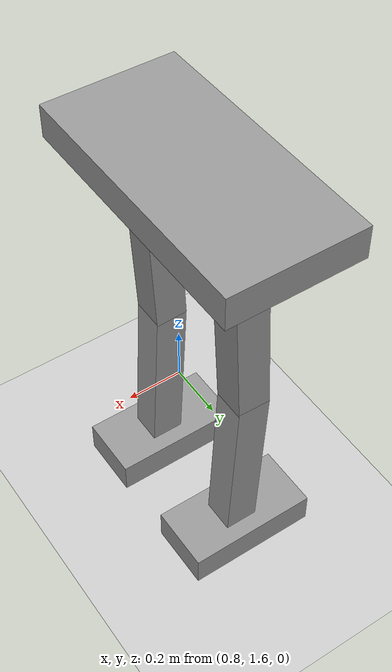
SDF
<sdf version="1.6">
 <world name="default">
  <model name="ground_plane">
   <static>1</static>
   <link name="link">
    <collision name="collision">
     <geometry><plane><normal>0 0 1</normal><size>100 100</size></plane></geometry>
     <surface>
      <contact><collide_bitmask>65535</collide_bitmask></contact>
      <friction><ode><mu>100</mu><mu2>50</mu2></ode></friction>
     </surface>
    </collision>
    <visual name="visual">
     <cast_shadows>0</cast_shadows>
     <geometry><plane><normal>0 0 1</normal><size>100 100</size></plane></geometry>
     <material>
      <script><uri>file://media/materials/scripts/gazebo.material</uri><name>Gazebo/Grey</name></script>
     </material>
    </visual>
   </link>
  </model>
  <model name="HumanoidRobot_clone_3">
   <link name="link_0">
    <inertial>
     <mass>1</mass>
     <inertia>
      <ixx>0.166667</ixx>
      <ixy>0</ixy>
      <ixz>0</ixz>
      <iyy>0.166667</iyy>
      <iyz>0</iyz>
      <izz>0.166667</izz>
     </inertia>
    </inertial>
    <pose>0 0 1.2 0 -0 0</pose>
    <visual name="visual">
     <geometry><box><size>0.4 0.8 0.1</size></box></geometry>
     <material>
      <lighting>1</lighting>
      <script><uri>file://media/materials/scripts/gazebo.material</uri><name>Gazebo/Grey</name></script>
      <shader type="vertex"><normal_map>__default__</normal_map></shader>
      <ambient>0.3 0.3 0.3 1</ambient>
      <diffuse>0.7 0.7 0.7 1</diffuse>
      <specular>0.01 0.01 0.01 1</specular>
      <emissive>0 0 0 1</emissive>
     </material>
    </visual>
    <collision name="collision">
     <geometry><box><size>0.4 0.8 0.1</size></box></geometry>
     <surface>
      <friction>
       <ode><mu>1</mu><mu2>1</mu2><fdir1>0 0 0</fdir1><slip1>0</slip1><slip2>0</slip2></ode>
       <torsional>
        <coefficient>1</coefficient>
        <patch_radius>0</patch_radius>
        <surface_radius>0</surface_radius>
        <use_patch_radius>1</use_patch_radius>
        <ode><slip>0</slip></ode>
       </torsional>
      </friction>
      <bounce><restitution_coefficient>0</restitution_coefficient><threshold>1e+06</threshold></bounce>
      <contact>
       <collide_without_contact>0</collide_without_contact>
       <collide_without_contact_bitmask>1</collide_without_contact_bitmask>
       <collide_bitmask>1</collide_bitmask>
       <ode>
        <soft_cfm>0</soft_cfm>
        <soft_erp>0.2</soft_erp>
        <kp>1e+13</kp>
        <kd>1</kd>
        <max_vel>0.01</max_vel>
        <min_depth>0</min_depth>
       </ode>
       <bullet>
        <split_impulse>1</split_impulse>
        <split_impulse_penetration_threshold>-0.01</split_impulse_penetration_threshold>
        <soft_cfm>0</soft_cfm>
        <soft_erp>0.2</soft_erp>
        <kp>1e+13</kp>
        <kd>1</kd>
       </bullet>
      </contact>
     </surface>
    </collision>
   </link>
   <link name="link_0_clone">
    <inertial>
     <mass>1</mass>
     <inertia>
      <ixx>0.166667</ixx>
      <ixy>0</ixy>
      <ixz>0</ixz>
      <iyy>0.166667</iyy>
      <iyz>0</iyz>
      <izz>0.166667</izz>
     </inertia>
    </inertial>
    <pose>0 0.2 0 0 -0 0</pose>
    <visual name="visual">
     <geometry><box><size>0.4 0.2 0.1</size></box></geometry>
     <material>
      <lighting>1</lighting>
      <script><uri>file://media/materials/scripts/gazebo.material</uri><name>Gazebo/Grey</name></script>
      <shader type="vertex"><normal_map>__default__</normal_map></shader>
      <ambient>0.3 0.3 0.3 1</ambient>
      <diffuse>0.7 0.7 0.7 1</diffuse>
      <specular>0.01 0.01 0.01 1</specular>
      <emissive>0 0 0 1</emissive>
     </material>
    </visual>
    <collision name="collision">
     <geometry><box><size>0.4 0.2 0.1</size></box></geometry>
     <surface>
      <friction>
       <ode><mu>1</mu><mu2>1</mu2><fdir1>0 0 0</fdir1><slip1>0</slip1><slip2>0</slip2></ode>
       <torsional>
        <coefficient>1</coefficient>
        <patch_radius>0</patch_radius>
        <surface_radius>0</surface_radius>
        <use_patch_radius>1</use_patch_radius>
        <ode><slip>0</slip></ode>
       </torsional>
      </friction>
      <bounce><restitution_coefficient>0</restitution_coefficient><threshold>1e+06</threshold></bounce>
      <contact>
       <collide_without_contact>0</collide_without_contact>
       <collide_without_contact_bitmask>1</collide_without_contact_bitmask>
       <collide_bitmask>1</collide_bitmask>
       <ode>
        <soft_cfm>0</soft_cfm>
        <soft_erp>0.2</soft_erp>
        <kp>1e+13</kp>
        <kd>1</kd>
        <max_vel>0.01</max_vel>
        <min_depth>0</min_depth>
       </ode>
       <bullet>
        <split_impulse>1</split_impulse>
        <split_impulse_penetration_threshold>-0.01</split_impulse_penetration_threshold>
        <soft_cfm>0</soft_cfm>
        <soft_erp>0.2</soft_erp>
        <kp>1e+13</kp>
        <kd>1</kd>
       </bullet>
      </contact>
     </surface>
    </collision>
   </link>
   <link name="link_0_clone_clone">
    <inertial>
     <mass>1</mass>
     <inertia>
      <ixx>0.166667</ixx>
      <ixy>0</ixy>
      <ixz>0</ixz>
      <iyy>0.166667</iyy>
      <iyz>0</iyz>
      <izz>0.166667</izz>
     </inertia>
    </inertial>
    <pose>0 -0.2 0 0 -0 0</pose>
    <visual name="visual">
     <geometry><box><size>0.4 0.2 0.1</size></box></geometry>
     <material>
      <lighting>1</lighting>
      <script><uri>file://media/materials/scripts/gazebo.material</uri><name>Gazebo/Grey</name></script>
      <shader type="vertex"><normal_map>__default__</normal_map></shader>
      <ambient>0.3 0.3 0.3 1</ambient>
      <diffuse>0.7 0.7 0.7 1</diffuse>
      <specular>0.01 0.01 0.01 1</specular>
      <emissive>0 0 0 1</emissive>
     </material>
    </visual>
    <collision name="collision">
     <geometry><box><size>0.4 0.2 0.1</size></box></geometry>
     <surface>
      <friction>
       <ode><mu>1</mu><mu2>1</mu2><fdir1>0 0 0</fdir1><slip1>0</slip1><slip2>0</slip2></ode>
       <torsional>
        <coefficient>1</coefficient>
        <patch_radius>0</patch_radius>
        <surface_radius>0</surface_radius>
        <use_patch_radius>1</use_patch_radius>
        <ode><slip>0</slip></ode>
       </torsional>
      </friction>
      <bounce><restitution_coefficient>0</restitution_coefficient><threshold>1e+06</threshold></bounce>
      <contact>
       <collide_without_contact>0</collide_without_contact>
       <collide_without_contact_bitmask>1</collide_without_contact_bitmask>
       <collide_bitmask>1</collide_bitmask>
       <ode>
        <soft_cfm>0</soft_cfm>
        <soft_erp>0.2</soft_erp>
        <kp>1e+13</kp>
        <kd>1</kd>
        <max_vel>0.01</max_vel>
        <min_depth>0</min_depth>
       </ode>
       <bullet>
        <split_impulse>1</split_impulse>
        <split_impulse_penetration_threshold>-0.01</split_impulse_penetration_threshold>
        <soft_cfm>0</soft_cfm>
        <soft_erp>0.2</soft_erp>
        <kp>1e+13</kp>
        <kd>1</kd>
       </bullet>
      </contact>
     </surface>
    </collision>
   </link>
   <link name="link_1">
    <inertial>
     <mass>1</mass>
     <inertia>
      <ixx>0.166667</ixx>
      <ixy>0</ixy>
      <ixz>0</ixz>
      <iyy>0.166667</iyy>
      <iyz>0</iyz>
      <izz>0.166667</izz>
     </inertia>
    </inertial>
    <pose>0 0.2 0.86 0 0.05 0</pose>
    <visual name="visual">
     <geometry><box><size>0.1 0.1 0.6</size></box></geometry>
     <material>
      <lighting>1</lighting>
      <script><uri>file://media/materials/scripts/gazebo.material</uri><name>Gazebo/Grey</name></script>
      <shader type="vertex"><normal_map>__default__</normal_map></shader>
      <ambient>0.3 0.3 0.3 1</ambient>
      <diffuse>0.7 0.7 0.7 1</diffuse>
      <specular>0.01 0.01 0.01 1</specular>
      <emissive>0 0 0 1</emissive>
     </material>
    </visual>
    <collision name="collision">
     <geometry><box><size>0.1 0.1 0.6</size></box></geometry>
     <surface>
      <friction>
       <ode><mu>1</mu><mu2>1</mu2><fdir1>0 0 0</fdir1><slip1>0</slip1><slip2>0</slip2></ode>
       <torsional>
        <coefficient>1</coefficient>
        <patch_radius>0</patch_radius>
        <surface_radius>0</surface_radius>
        <use_patch_radius>1</use_patch_radius>
        <ode><slip>0</slip></ode>
       </torsional>
      </friction>
      <bounce><restitution_coefficient>0</restitution_coefficient><threshold>1e+06</threshold></bounce>
      <contact>
       <collide_without_contact>0</collide_without_contact>
       <collide_without_contact_bitmask>1</collide_without_contact_bitmask>
       <collide_bitmask>1</collide_bitmask>
       <ode>
        <soft_cfm>0</soft_cfm>
        <soft_erp>0.2</soft_erp>
        <kp>1e+13</kp>
        <kd>1</kd>
        <max_vel>0.01</max_vel>
        <min_depth>0</min_depth>
       </ode>
       <bullet>
        <split_impulse>1</split_impulse>
        <split_impulse_penetration_threshold>-0.01</split_impulse_penetration_threshold>
        <soft_cfm>0</soft_cfm>
        <soft_erp>0.2</soft_erp>
        <kp>1e+13</kp>
        <kd>1</kd>
       </bullet>
      </contact>
     </surface>
    </collision>
   </link>
   <link name="link_1_clone">
    <inertial>
     <mass>1</mass>
     <inertia>
      <ixx>0.166667</ixx>
      <ixy>0</ixy>
      <ixz>0</ixz>
      <iyy>0.166667</iyy>
      <iyz>0</iyz>
      <izz>0.166667</izz>
     </inertia>
    </inertial>
    <pose>0 -0.2 0.86 0 0.05 0</pose>
    <visual name="visual">
     <geometry><box><size>0.1 0.1 0.6</size></box></geometry>
     <material>
      <lighting>1</lighting>
      <script><uri>file://media/materials/scripts/gazebo.material</uri><name>Gazebo/Grey</name></script>
      <shader type="vertex"><normal_map>__default__</normal_map></shader>
      <ambient>0.3 0.3 0.3 1</ambient>
      <diffuse>0.7 0.7 0.7 1</diffuse>
      <specular>0.01 0.01 0.01 1</specular>
      <emissive>0 0 0 1</emissive>
     </material>
    </visual>
    <collision name="collision">
     <geometry><box><size>0.1 0.1 0.6</size></box></geometry>
     <surface>
      <friction>
       <ode><mu>1</mu><mu2>1</mu2><fdir1>0 0 0</fdir1><slip1>0</slip1><slip2>0</slip2></ode>
       <torsional>
        <coefficient>1</coefficient>
        <patch_radius>0</patch_radius>
        <surface_radius>0</surface_radius>
        <use_patch_radius>1</use_patch_radius>
        <ode><slip>0</slip></ode>
       </torsional>
      </friction>
      <bounce><restitution_coefficient>0</restitution_coefficient><threshold>1e+06</threshold></bounce>
      <contact>
       <collide_without_contact>0</collide_without_contact>
       <collide_without_contact_bitmask>1</collide_without_contact_bitmask>
       <collide_bitmask>1</collide_bitmask>
       <ode>
        <soft_cfm>0</soft_cfm>
        <soft_erp>0.2</soft_erp>
        <kp>1e+13</kp>
        <kd>1</kd>
        <max_vel>0.01</max_vel>
        <min_depth>0</min_depth>
       </ode>
       <bullet>
        <split_impulse>1</split_impulse>
        <split_impulse_penetration_threshold>-0.01</split_impulse_penetration_threshold>
        <soft_cfm>0</soft_cfm>
        <soft_erp>0.2</soft_erp>
        <kp>1e+13</kp>
        <kd>1</kd>
       </bullet>
      </contact>
     </surface>
    </collision>
   </link>
   <link name="link_1_clone_0">
    <inertial>
     <mass>1</mass>
     <inertia>
      <ixx>0.166667</ixx>
      <ixy>0</ixy>
      <ixz>0</ixz>
      <iyy>0.166667</iyy>
      <iyz>0</iyz>
      <izz>0.166667</izz>
     </inertia>
    </inertial>
    <pose>0 0.2 0.27 0 -0.05 0</pose>
    <visual name="visual">
     <geometry><box><size>0.1 0.1 0.6</size></box></geometry>
     <material>
      <lighting>1</lighting>
      <script><uri>file://media/materials/scripts/gazebo.material</uri><name>Gazebo/Grey</name></script>
      <shader type="vertex"><normal_map>__default__</normal_map></shader>
      <ambient>0.3 0.3 0.3 1</ambient>
      <diffuse>0.7 0.7 0.7 1</diffuse>
      <specular>0.01 0.01 0.01 1</specular>
      <emissive>0 0 0 1</emissive>
     </material>
    </visual>
    <collision name="collision">
     <geometry><box><size>0.1 0.1 0.6</size></box></geometry>
     <surface>
      <friction>
       <ode><mu>1</mu><mu2>1</mu2><fdir1>0 0 0</fdir1><slip1>0</slip1><slip2>0</slip2></ode>
       <torsional>
        <coefficient>1</coefficient>
        <patch_radius>0</patch_radius>
        <surface_radius>0</surface_radius>
        <use_patch_radius>1</use_patch_radius>
        <ode><slip>0</slip></ode>
       </torsional>
      </friction>
      <bounce><restitution_coefficient>0</restitution_coefficient><threshold>1e+06</threshold></bounce>
      <contact>
       <collide_without_contact>0</collide_without_contact>
       <collide_without_contact_bitmask>1</collide_without_contact_bitmask>
       <collide_bitmask>1</collide_bitmask>
       <ode>
        <soft_cfm>0</soft_cfm>
        <soft_erp>0.2</soft_erp>
        <kp>1e+13</kp>
        <kd>1</kd>
        <max_vel>0.01</max_vel>
        <min_depth>0</min_depth>
       </ode>
       <bullet>
        <split_impulse>1</split_impulse>
        <split_impulse_penetration_threshold>-0.01</split_impulse_penetration_threshold>
        <soft_cfm>0</soft_cfm>
        <soft_erp>0.2</soft_erp>
        <kp>1e+13</kp>
        <kd>1</kd>
       </bullet>
      </contact>
     </surface>
    </collision>
   </link>
   <link name="link_1_clone_0_clone">
    <inertial>
     <mass>1</mass>
     <inertia>
      <ixx>0.166667</ixx>
      <ixy>0</ixy>
      <ixz>0</ixz>
      <iyy>0.166667</iyy>
      <iyz>0</iyz>
      <izz>0.166667</izz>
     </inertia>
    </inertial>
    <pose>0 -0.2 0.27 0 -0.05 0</pose>
    <visual name="visual">
     <geometry><box><size>0.1 0.1 0.6</size></box></geometry>
     <material>
      <lighting>1</lighting>
      <script><uri>file://media/materials/scripts/gazebo.material</uri><name>Gazebo/Grey</name></script>
      <shader type="vertex"><normal_map>__default__</normal_map></shader>
      <ambient>0.3 0.3 0.3 1</ambient>
      <diffuse>0.7 0.7 0.7 1</diffuse>
      <specular>0.01 0.01 0.01 1</specular>
      <emissive>0 0 0 1</emissive>
     </material>
    </visual>
    <collision name="collision">
     <geometry><box><size>0.1 0.1 0.6</size></box></geometry>
     <surface>
      <friction>
       <ode><mu>1</mu><mu2>1</mu2><fdir1>0 0 0</fdir1><slip1>0</slip1><slip2>0</slip2></ode>
       <torsional>
        <coefficient>1</coefficient>
        <patch_radius>0</patch_radius>
        <surface_radius>0</surface_radius>
        <use_patch_radius>1</use_patch_radius>
        <ode><slip>0</slip></ode>
       </torsional>
      </friction>
      <bounce><restitution_coefficient>0</restitution_coefficient><threshold>1e+06</threshold></bounce>
      <contact>
       <collide_without_contact>0</collide_without_contact>
       <collide_without_contact_bitmask>1</collide_without_contact_bitmask>
       <collide_bitmask>1</collide_bitmask>
       <ode>
        <soft_cfm>0</soft_cfm>
        <soft_erp>0.2</soft_erp>
        <kp>1e+13</kp>
        <kd>1</kd>
        <max_vel>0.01</max_vel>
        <min_depth>0</min_depth>
       </ode>
       <bullet>
        <split_impulse>1</split_impulse>
        <split_impulse_penetration_threshold>-0.01</split_impulse_penetration_threshold>
        <soft_cfm>0</soft_cfm>
        <soft_erp>0.2</soft_erp>
        <kp>1e+13</kp>
        <kd>1</kd>
       </bullet>
      </contact>
     </surface>
    </collision>
   </link>
   <joint name="link_0_JOINT_0" type="fixed">
    <parent>link_0</parent>
    <child>link_1_clone</child>
    <physics>
     <ode><limit><cfm>0</cfm><erp>0.2</erp></limit><suspension><cfm>0</cfm><erp>0.2</erp></suspension></ode>
    </physics>
   </joint>
   <joint name="link_0_JOINT_1" type="fixed">
    <parent>link_0</parent>
    <child>link_1</child>
    <physics>
     <ode><limit><cfm>0</cfm><erp>0.2</erp></limit><suspension><cfm>0</cfm><erp>0.2</erp></suspension></ode>
    </physics>
   </joint>
   <joint name="link_1_JOINT_3" type="fixed">
    <parent>link_1</parent>
    <child>link_1_clone_0</child>
    <physics>
     <ode><limit><cfm>0</cfm><erp>0.2</erp></limit><suspension><cfm>0</cfm><erp>0.2</erp></suspension></ode>
    </physics>
   </joint>
   <joint name="link_1_clone_0_JOINT_5" type="fixed">
    <parent>link_1_clone_0</parent>
    <child>link_0_clone</child>
    <physics>
     <ode><limit><cfm>0</cfm><erp>0.2</erp></limit><suspension><cfm>0</cfm><erp>0.2</erp></suspension></ode>
    </physics>
   </joint>
   <joint name="link_1_clone_0_clone_JOINT_4" type="fixed">
    <parent>link_1_clone_0_clone</parent>
    <child>link_0_clone_clone</child>
    <physics>
     <ode><limit><cfm>0</cfm><erp>0.2</erp></limit><suspension><cfm>0</cfm><erp>0.2</erp></suspension></ode>
    </physics>
   </joint>
   <joint name="link_1_clone_JOINT_2" type="fixed">
    <parent>link_1_clone</parent>
    <child>link_1_clone_0_clone</child>
    <physics>
     <ode><limit><cfm>0</cfm><erp>0.2</erp></limit><suspension><cfm>0</cfm><erp>0.2</erp></suspension></ode>
    </physics>
   </joint>
   <static>0</static>
   <pose>1.00002 2.00027 0.049992 -1e-06 -2e-06 -5e-05</pose>
  </model>
 </world>
</sdf>
